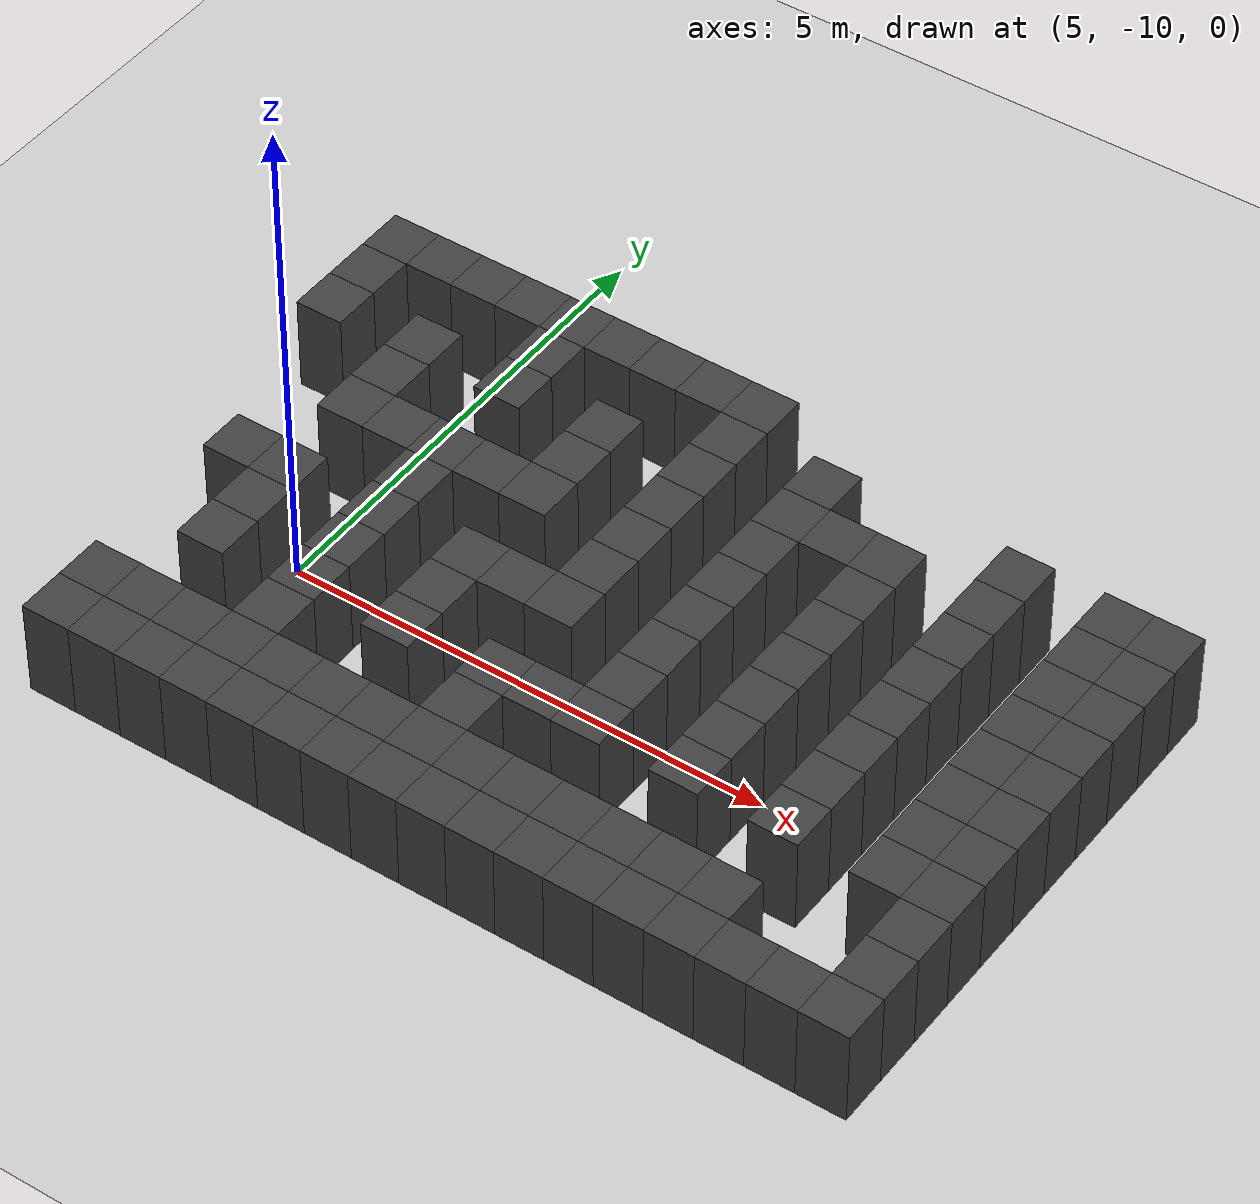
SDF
<sdf version="1.7">
 <world name="map_18553">
  <model name="ground_plane">
   <static>true</static>
   <link name="link">
    <collision name="collision">
     <geometry><plane><normal>0 0 1</normal><size>200 200</size></plane></geometry>
    </collision>
    <visual name="visual">
     <geometry><plane><normal>0 0 1</normal><size>200 200</size></plane></geometry>
     <material><ambient>0.8 0.8 0.8 1</ambient><diffuse>0.8 0.8 0.8 1</diffuse></material>
    </visual>
   </link>
  </model>
  <model name="maze_environment">
   <static>true</static>
   <link name="wall_977">
    <pose>3.750 -6.750 0.500 0 0 0</pose>
    <collision name="col"><geometry><box><size>0.5 0.5 1.0</size></box></geometry></collision>
    <visual name="vis">
     <geometry><box><size>0.5 0.5 1.0</size></box></geometry>
     <material><ambient>0.15 0.15 0.15 1</ambient><diffuse>0.25 0.25 0.25 1</diffuse></material>
    </visual>
   </link>
   <link name="wall_978">
    <pose>4.250 -6.750 0.500 0 0 0</pose>
    <collision name="col"><geometry><box><size>0.5 0.5 1.0</size></box></geometry></collision>
    <visual name="vis">
     <geometry><box><size>0.5 0.5 1.0</size></box></geometry>
     <material><ambient>0.15 0.15 0.15 1</ambient><diffuse>0.25 0.25 0.25 1</diffuse></material>
    </visual>
   </link>
   <link name="wall_979">
    <pose>4.750 -6.750 0.500 0 0 0</pose>
    <collision name="col"><geometry><box><size>0.5 0.5 1.0</size></box></geometry></collision>
    <visual name="vis">
     <geometry><box><size>0.5 0.5 1.0</size></box></geometry>
     <material><ambient>0.15 0.15 0.15 1</ambient><diffuse>0.25 0.25 0.25 1</diffuse></material>
    </visual>
   </link>
   <link name="wall_980">
    <pose>5.250 -6.750 0.500 0 0 0</pose>
    <collision name="col"><geometry><box><size>0.5 0.5 1.0</size></box></geometry></collision>
    <visual name="vis">
     <geometry><box><size>0.5 0.5 1.0</size></box></geometry>
     <material><ambient>0.15 0.15 0.15 1</ambient><diffuse>0.25 0.25 0.25 1</diffuse></material>
    </visual>
   </link>
   <link name="wall_981">
    <pose>5.750 -6.750 0.500 0 0 0</pose>
    <collision name="col"><geometry><box><size>0.5 0.5 1.0</size></box></geometry></collision>
    <visual name="vis">
     <geometry><box><size>0.5 0.5 1.0</size></box></geometry>
     <material><ambient>0.15 0.15 0.15 1</ambient><diffuse>0.25 0.25 0.25 1</diffuse></material>
    </visual>
   </link>
   <link name="wall_982">
    <pose>6.250 -6.750 0.500 0 0 0</pose>
    <collision name="col"><geometry><box><size>0.5 0.5 1.0</size></box></geometry></collision>
    <visual name="vis">
     <geometry><box><size>0.5 0.5 1.0</size></box></geometry>
     <material><ambient>0.15 0.15 0.15 1</ambient><diffuse>0.25 0.25 0.25 1</diffuse></material>
    </visual>
   </link>
   <link name="wall_983">
    <pose>6.750 -6.750 0.500 0 0 0</pose>
    <collision name="col"><geometry><box><size>0.5 0.5 1.0</size></box></geometry></collision>
    <visual name="vis">
     <geometry><box><size>0.5 0.5 1.0</size></box></geometry>
     <material><ambient>0.15 0.15 0.15 1</ambient><diffuse>0.25 0.25 0.25 1</diffuse></material>
    </visual>
   </link>
   <link name="wall_984">
    <pose>7.250 -6.750 0.500 0 0 0</pose>
    <collision name="col"><geometry><box><size>0.5 0.5 1.0</size></box></geometry></collision>
    <visual name="vis">
     <geometry><box><size>0.5 0.5 1.0</size></box></geometry>
     <material><ambient>0.15 0.15 0.15 1</ambient><diffuse>0.25 0.25 0.25 1</diffuse></material>
    </visual>
   </link>
   <link name="wall_985">
    <pose>7.750 -6.750 0.500 0 0 0</pose>
    <collision name="col"><geometry><box><size>0.5 0.5 1.0</size></box></geometry></collision>
    <visual name="vis">
     <geometry><box><size>0.5 0.5 1.0</size></box></geometry>
     <material><ambient>0.15 0.15 0.15 1</ambient><diffuse>0.25 0.25 0.25 1</diffuse></material>
    </visual>
   </link>
   <link name="wall_999">
    <pose>3.750 -7.250 0.500 0 0 0</pose>
    <collision name="col"><geometry><box><size>0.5 0.5 1.0</size></box></geometry></collision>
    <visual name="vis">
     <geometry><box><size>0.5 0.5 1.0</size></box></geometry>
     <material><ambient>0.15 0.15 0.15 1</ambient><diffuse>0.25 0.25 0.25 1</diffuse></material>
    </visual>
   </link>
   <link name="wall_1000">
    <pose>5.750 -7.250 0.500 0 0 0</pose>
    <collision name="col"><geometry><box><size>0.5 0.5 1.0</size></box></geometry></collision>
    <visual name="vis">
     <geometry><box><size>0.5 0.5 1.0</size></box></geometry>
     <material><ambient>0.15 0.15 0.15 1</ambient><diffuse>0.25 0.25 0.25 1</diffuse></material>
    </visual>
   </link>
   <link name="wall_1001">
    <pose>7.750 -7.250 0.500 0 0 0</pose>
    <collision name="col"><geometry><box><size>0.5 0.5 1.0</size></box></geometry></collision>
    <visual name="vis">
     <geometry><box><size>0.5 0.5 1.0</size></box></geometry>
     <material><ambient>0.15 0.15 0.15 1</ambient><diffuse>0.25 0.25 0.25 1</diffuse></material>
    </visual>
   </link>
   <link name="wall_1002">
    <pose>8.750 -7.250 0.500 0 0 0</pose>
    <collision name="col"><geometry><box><size>0.5 0.5 1.0</size></box></geometry></collision>
    <visual name="vis">
     <geometry><box><size>0.5 0.5 1.0</size></box></geometry>
     <material><ambient>0.15 0.15 0.15 1</ambient><diffuse>0.25 0.25 0.25 1</diffuse></material>
    </visual>
   </link>
   <link name="wall_1003">
    <pose>10.750 -7.250 0.500 0 0 0</pose>
    <collision name="col"><geometry><box><size>0.5 0.5 1.0</size></box></geometry></collision>
    <visual name="vis">
     <geometry><box><size>0.5 0.5 1.0</size></box></geometry>
     <material><ambient>0.15 0.15 0.15 1</ambient><diffuse>0.25 0.25 0.25 1</diffuse></material>
    </visual>
   </link>
   <link name="wall_1004">
    <pose>11.750 -7.250 0.500 0 0 0</pose>
    <collision name="col"><geometry><box><size>0.5 0.5 1.0</size></box></geometry></collision>
    <visual name="vis">
     <geometry><box><size>0.5 0.5 1.0</size></box></geometry>
     <material><ambient>0.15 0.15 0.15 1</ambient><diffuse>0.25 0.25 0.25 1</diffuse></material>
    </visual>
   </link>
   <link name="wall_1005">
    <pose>12.250 -7.250 0.500 0 0 0</pose>
    <collision name="col"><geometry><box><size>0.5 0.5 1.0</size></box></geometry></collision>
    <visual name="vis">
     <geometry><box><size>0.5 0.5 1.0</size></box></geometry>
     <material><ambient>0.15 0.15 0.15 1</ambient><diffuse>0.25 0.25 0.25 1</diffuse></material>
    </visual>
   </link>
   <link name="wall_1031">
    <pose>3.750 -7.750 0.500 0 0 0</pose>
    <collision name="col"><geometry><box><size>0.5 0.5 1.0</size></box></geometry></collision>
    <visual name="vis">
     <geometry><box><size>0.5 0.5 1.0</size></box></geometry>
     <material><ambient>0.15 0.15 0.15 1</ambient><diffuse>0.25 0.25 0.25 1</diffuse></material>
    </visual>
   </link>
   <link name="wall_1032">
    <pose>4.750 -7.750 0.500 0 0 0</pose>
    <collision name="col"><geometry><box><size>0.5 0.5 1.0</size></box></geometry></collision>
    <visual name="vis">
     <geometry><box><size>0.5 0.5 1.0</size></box></geometry>
     <material><ambient>0.15 0.15 0.15 1</ambient><diffuse>0.25 0.25 0.25 1</diffuse></material>
    </visual>
   </link>
   <link name="wall_1033">
    <pose>5.750 -7.750 0.500 0 0 0</pose>
    <collision name="col"><geometry><box><size>0.5 0.5 1.0</size></box></geometry></collision>
    <visual name="vis">
     <geometry><box><size>0.5 0.5 1.0</size></box></geometry>
     <material><ambient>0.15 0.15 0.15 1</ambient><diffuse>0.25 0.25 0.25 1</diffuse></material>
    </visual>
   </link>
   <link name="wall_1034">
    <pose>6.750 -7.750 0.500 0 0 0</pose>
    <collision name="col"><geometry><box><size>0.5 0.5 1.0</size></box></geometry></collision>
    <visual name="vis">
     <geometry><box><size>0.5 0.5 1.0</size></box></geometry>
     <material><ambient>0.15 0.15 0.15 1</ambient><diffuse>0.25 0.25 0.25 1</diffuse></material>
    </visual>
   </link>
   <link name="wall_1035">
    <pose>7.750 -7.750 0.500 0 0 0</pose>
    <collision name="col"><geometry><box><size>0.5 0.5 1.0</size></box></geometry></collision>
    <visual name="vis">
     <geometry><box><size>0.5 0.5 1.0</size></box></geometry>
     <material><ambient>0.15 0.15 0.15 1</ambient><diffuse>0.25 0.25 0.25 1</diffuse></material>
    </visual>
   </link>
   <link name="wall_1036">
    <pose>8.750 -7.750 0.500 0 0 0</pose>
    <collision name="col"><geometry><box><size>0.5 0.5 1.0</size></box></geometry></collision>
    <visual name="vis">
     <geometry><box><size>0.5 0.5 1.0</size></box></geometry>
     <material><ambient>0.15 0.15 0.15 1</ambient><diffuse>0.25 0.25 0.25 1</diffuse></material>
    </visual>
   </link>
   <link name="wall_1037">
    <pose>9.250 -7.750 0.500 0 0 0</pose>
    <collision name="col"><geometry><box><size>0.5 0.5 1.0</size></box></geometry></collision>
    <visual name="vis">
     <geometry><box><size>0.5 0.5 1.0</size></box></geometry>
     <material><ambient>0.15 0.15 0.15 1</ambient><diffuse>0.25 0.25 0.25 1</diffuse></material>
    </visual>
   </link>
   <link name="wall_1038">
    <pose>9.750 -7.750 0.500 0 0 0</pose>
    <collision name="col"><geometry><box><size>0.5 0.5 1.0</size></box></geometry></collision>
    <visual name="vis">
     <geometry><box><size>0.5 0.5 1.0</size></box></geometry>
     <material><ambient>0.15 0.15 0.15 1</ambient><diffuse>0.25 0.25 0.25 1</diffuse></material>
    </visual>
   </link>
   <link name="wall_1039">
    <pose>10.750 -7.750 0.500 0 0 0</pose>
    <collision name="col"><geometry><box><size>0.5 0.5 1.0</size></box></geometry></collision>
    <visual name="vis">
     <geometry><box><size>0.5 0.5 1.0</size></box></geometry>
     <material><ambient>0.15 0.15 0.15 1</ambient><diffuse>0.25 0.25 0.25 1</diffuse></material>
    </visual>
   </link>
   <link name="wall_1040">
    <pose>11.750 -7.750 0.500 0 0 0</pose>
    <collision name="col"><geometry><box><size>0.5 0.5 1.0</size></box></geometry></collision>
    <visual name="vis">
     <geometry><box><size>0.5 0.5 1.0</size></box></geometry>
     <material><ambient>0.15 0.15 0.15 1</ambient><diffuse>0.25 0.25 0.25 1</diffuse></material>
    </visual>
   </link>
   <link name="wall_1041">
    <pose>12.250 -7.750 0.500 0 0 0</pose>
    <collision name="col"><geometry><box><size>0.5 0.5 1.0</size></box></geometry></collision>
    <visual name="vis">
     <geometry><box><size>0.5 0.5 1.0</size></box></geometry>
     <material><ambient>0.15 0.15 0.15 1</ambient><diffuse>0.25 0.25 0.25 1</diffuse></material>
    </visual>
   </link>
   <link name="wall_1049">
    <pose>4.750 -8.250 0.500 0 0 0</pose>
    <collision name="col"><geometry><box><size>0.5 0.5 1.0</size></box></geometry></collision>
    <visual name="vis">
     <geometry><box><size>0.5 0.5 1.0</size></box></geometry>
     <material><ambient>0.15 0.15 0.15 1</ambient><diffuse>0.25 0.25 0.25 1</diffuse></material>
    </visual>
   </link>
   <link name="wall_1050">
    <pose>6.750 -8.250 0.500 0 0 0</pose>
    <collision name="col"><geometry><box><size>0.5 0.5 1.0</size></box></geometry></collision>
    <visual name="vis">
     <geometry><box><size>0.5 0.5 1.0</size></box></geometry>
     <material><ambient>0.15 0.15 0.15 1</ambient><diffuse>0.25 0.25 0.25 1</diffuse></material>
    </visual>
   </link>
   <link name="wall_1051">
    <pose>7.750 -8.250 0.500 0 0 0</pose>
    <collision name="col"><geometry><box><size>0.5 0.5 1.0</size></box></geometry></collision>
    <visual name="vis">
     <geometry><box><size>0.5 0.5 1.0</size></box></geometry>
     <material><ambient>0.15 0.15 0.15 1</ambient><diffuse>0.25 0.25 0.25 1</diffuse></material>
    </visual>
   </link>
   <link name="wall_1052">
    <pose>8.750 -8.250 0.500 0 0 0</pose>
    <collision name="col"><geometry><box><size>0.5 0.5 1.0</size></box></geometry></collision>
    <visual name="vis">
     <geometry><box><size>0.5 0.5 1.0</size></box></geometry>
     <material><ambient>0.15 0.15 0.15 1</ambient><diffuse>0.25 0.25 0.25 1</diffuse></material>
    </visual>
   </link>
   <link name="wall_1053">
    <pose>9.750 -8.250 0.500 0 0 0</pose>
    <collision name="col"><geometry><box><size>0.5 0.5 1.0</size></box></geometry></collision>
    <visual name="vis">
     <geometry><box><size>0.5 0.5 1.0</size></box></geometry>
     <material><ambient>0.15 0.15 0.15 1</ambient><diffuse>0.25 0.25 0.25 1</diffuse></material>
    </visual>
   </link>
   <link name="wall_1054">
    <pose>10.750 -8.250 0.500 0 0 0</pose>
    <collision name="col"><geometry><box><size>0.5 0.5 1.0</size></box></geometry></collision>
    <visual name="vis">
     <geometry><box><size>0.5 0.5 1.0</size></box></geometry>
     <material><ambient>0.15 0.15 0.15 1</ambient><diffuse>0.25 0.25 0.25 1</diffuse></material>
    </visual>
   </link>
   <link name="wall_1055">
    <pose>11.750 -8.250 0.500 0 0 0</pose>
    <collision name="col"><geometry><box><size>0.5 0.5 1.0</size></box></geometry></collision>
    <visual name="vis">
     <geometry><box><size>0.5 0.5 1.0</size></box></geometry>
     <material><ambient>0.15 0.15 0.15 1</ambient><diffuse>0.25 0.25 0.25 1</diffuse></material>
    </visual>
   </link>
   <link name="wall_1056">
    <pose>12.250 -8.250 0.500 0 0 0</pose>
    <collision name="col"><geometry><box><size>0.5 0.5 1.0</size></box></geometry></collision>
    <visual name="vis">
     <geometry><box><size>0.5 0.5 1.0</size></box></geometry>
     <material><ambient>0.15 0.15 0.15 1</ambient><diffuse>0.25 0.25 0.25 1</diffuse></material>
    </visual>
   </link>
   <link name="wall_1079">
    <pose>4.750 -8.750 0.500 0 0 0</pose>
    <collision name="col"><geometry><box><size>0.5 0.5 1.0</size></box></geometry></collision>
    <visual name="vis">
     <geometry><box><size>0.5 0.5 1.0</size></box></geometry>
     <material><ambient>0.15 0.15 0.15 1</ambient><diffuse>0.25 0.25 0.25 1</diffuse></material>
    </visual>
   </link>
   <link name="wall_1080">
    <pose>5.250 -8.750 0.500 0 0 0</pose>
    <collision name="col"><geometry><box><size>0.5 0.5 1.0</size></box></geometry></collision>
    <visual name="vis">
     <geometry><box><size>0.5 0.5 1.0</size></box></geometry>
     <material><ambient>0.15 0.15 0.15 1</ambient><diffuse>0.25 0.25 0.25 1</diffuse></material>
    </visual>
   </link>
   <link name="wall_1081">
    <pose>5.750 -8.750 0.500 0 0 0</pose>
    <collision name="col"><geometry><box><size>0.5 0.5 1.0</size></box></geometry></collision>
    <visual name="vis">
     <geometry><box><size>0.5 0.5 1.0</size></box></geometry>
     <material><ambient>0.15 0.15 0.15 1</ambient><diffuse>0.25 0.25 0.25 1</diffuse></material>
    </visual>
   </link>
   <link name="wall_1082">
    <pose>6.250 -8.750 0.500 0 0 0</pose>
    <collision name="col"><geometry><box><size>0.5 0.5 1.0</size></box></geometry></collision>
    <visual name="vis">
     <geometry><box><size>0.5 0.5 1.0</size></box></geometry>
     <material><ambient>0.15 0.15 0.15 1</ambient><diffuse>0.25 0.25 0.25 1</diffuse></material>
    </visual>
   </link>
   <link name="wall_1083">
    <pose>6.750 -8.750 0.500 0 0 0</pose>
    <collision name="col"><geometry><box><size>0.5 0.5 1.0</size></box></geometry></collision>
    <visual name="vis">
     <geometry><box><size>0.5 0.5 1.0</size></box></geometry>
     <material><ambient>0.15 0.15 0.15 1</ambient><diffuse>0.25 0.25 0.25 1</diffuse></material>
    </visual>
   </link>
   <link name="wall_1084">
    <pose>7.750 -8.750 0.500 0 0 0</pose>
    <collision name="col"><geometry><box><size>0.5 0.5 1.0</size></box></geometry></collision>
    <visual name="vis">
     <geometry><box><size>0.5 0.5 1.0</size></box></geometry>
     <material><ambient>0.15 0.15 0.15 1</ambient><diffuse>0.25 0.25 0.25 1</diffuse></material>
    </visual>
   </link>
   <link name="wall_1085">
    <pose>8.750 -8.750 0.500 0 0 0</pose>
    <collision name="col"><geometry><box><size>0.5 0.5 1.0</size></box></geometry></collision>
    <visual name="vis">
     <geometry><box><size>0.5 0.5 1.0</size></box></geometry>
     <material><ambient>0.15 0.15 0.15 1</ambient><diffuse>0.25 0.25 0.25 1</diffuse></material>
    </visual>
   </link>
   <link name="wall_1086">
    <pose>9.750 -8.750 0.500 0 0 0</pose>
    <collision name="col"><geometry><box><size>0.5 0.5 1.0</size></box></geometry></collision>
    <visual name="vis">
     <geometry><box><size>0.5 0.5 1.0</size></box></geometry>
     <material><ambient>0.15 0.15 0.15 1</ambient><diffuse>0.25 0.25 0.25 1</diffuse></material>
    </visual>
   </link>
   <link name="wall_1087">
    <pose>10.750 -8.750 0.500 0 0 0</pose>
    <collision name="col"><geometry><box><size>0.5 0.5 1.0</size></box></geometry></collision>
    <visual name="vis">
     <geometry><box><size>0.5 0.5 1.0</size></box></geometry>
     <material><ambient>0.15 0.15 0.15 1</ambient><diffuse>0.25 0.25 0.25 1</diffuse></material>
    </visual>
   </link>
   <link name="wall_1088">
    <pose>11.750 -8.750 0.500 0 0 0</pose>
    <collision name="col"><geometry><box><size>0.5 0.5 1.0</size></box></geometry></collision>
    <visual name="vis">
     <geometry><box><size>0.5 0.5 1.0</size></box></geometry>
     <material><ambient>0.15 0.15 0.15 1</ambient><diffuse>0.25 0.25 0.25 1</diffuse></material>
    </visual>
   </link>
   <link name="wall_1089">
    <pose>12.250 -8.750 0.500 0 0 0</pose>
    <collision name="col"><geometry><box><size>0.5 0.5 1.0</size></box></geometry></collision>
    <visual name="vis">
     <geometry><box><size>0.5 0.5 1.0</size></box></geometry>
     <material><ambient>0.15 0.15 0.15 1</ambient><diffuse>0.25 0.25 0.25 1</diffuse></material>
    </visual>
   </link>
   <link name="wall_1102">
    <pose>5.750 -9.250 0.500 0 0 0</pose>
    <collision name="col"><geometry><box><size>0.5 0.5 1.0</size></box></geometry></collision>
    <visual name="vis">
     <geometry><box><size>0.5 0.5 1.0</size></box></geometry>
     <material><ambient>0.15 0.15 0.15 1</ambient><diffuse>0.25 0.25 0.25 1</diffuse></material>
    </visual>
   </link>
   <link name="wall_1103">
    <pose>7.750 -9.250 0.500 0 0 0</pose>
    <collision name="col"><geometry><box><size>0.5 0.5 1.0</size></box></geometry></collision>
    <visual name="vis">
     <geometry><box><size>0.5 0.5 1.0</size></box></geometry>
     <material><ambient>0.15 0.15 0.15 1</ambient><diffuse>0.25 0.25 0.25 1</diffuse></material>
    </visual>
   </link>
   <link name="wall_1104">
    <pose>8.750 -9.250 0.500 0 0 0</pose>
    <collision name="col"><geometry><box><size>0.5 0.5 1.0</size></box></geometry></collision>
    <visual name="vis">
     <geometry><box><size>0.5 0.5 1.0</size></box></geometry>
     <material><ambient>0.15 0.15 0.15 1</ambient><diffuse>0.25 0.25 0.25 1</diffuse></material>
    </visual>
   </link>
   <link name="wall_1105">
    <pose>9.750 -9.250 0.500 0 0 0</pose>
    <collision name="col"><geometry><box><size>0.5 0.5 1.0</size></box></geometry></collision>
    <visual name="vis">
     <geometry><box><size>0.5 0.5 1.0</size></box></geometry>
     <material><ambient>0.15 0.15 0.15 1</ambient><diffuse>0.25 0.25 0.25 1</diffuse></material>
    </visual>
   </link>
   <link name="wall_1106">
    <pose>10.750 -9.250 0.500 0 0 0</pose>
    <collision name="col"><geometry><box><size>0.5 0.5 1.0</size></box></geometry></collision>
    <visual name="vis">
     <geometry><box><size>0.5 0.5 1.0</size></box></geometry>
     <material><ambient>0.15 0.15 0.15 1</ambient><diffuse>0.25 0.25 0.25 1</diffuse></material>
    </visual>
   </link>
   <link name="wall_1107">
    <pose>11.750 -9.250 0.500 0 0 0</pose>
    <collision name="col"><geometry><box><size>0.5 0.5 1.0</size></box></geometry></collision>
    <visual name="vis">
     <geometry><box><size>0.5 0.5 1.0</size></box></geometry>
     <material><ambient>0.15 0.15 0.15 1</ambient><diffuse>0.25 0.25 0.25 1</diffuse></material>
    </visual>
   </link>
   <link name="wall_1108">
    <pose>12.250 -9.250 0.500 0 0 0</pose>
    <collision name="col"><geometry><box><size>0.5 0.5 1.0</size></box></geometry></collision>
    <visual name="vis">
     <geometry><box><size>0.5 0.5 1.0</size></box></geometry>
     <material><ambient>0.15 0.15 0.15 1</ambient><diffuse>0.25 0.25 0.25 1</diffuse></material>
    </visual>
   </link>
   <link name="wall_1131">
    <pose>4.250 -9.750 0.500 0 0 0</pose>
    <collision name="col"><geometry><box><size>0.5 0.5 1.0</size></box></geometry></collision>
    <visual name="vis">
     <geometry><box><size>0.5 0.5 1.0</size></box></geometry>
     <material><ambient>0.15 0.15 0.15 1</ambient><diffuse>0.25 0.25 0.25 1</diffuse></material>
    </visual>
   </link>
   <link name="wall_1132">
    <pose>4.750 -9.750 0.500 0 0 0</pose>
    <collision name="col"><geometry><box><size>0.5 0.5 1.0</size></box></geometry></collision>
    <visual name="vis">
     <geometry><box><size>0.5 0.5 1.0</size></box></geometry>
     <material><ambient>0.15 0.15 0.15 1</ambient><diffuse>0.25 0.25 0.25 1</diffuse></material>
    </visual>
   </link>
   <link name="wall_1133">
    <pose>5.750 -9.750 0.500 0 0 0</pose>
    <collision name="col"><geometry><box><size>0.5 0.5 1.0</size></box></geometry></collision>
    <visual name="vis">
     <geometry><box><size>0.5 0.5 1.0</size></box></geometry>
     <material><ambient>0.15 0.15 0.15 1</ambient><diffuse>0.25 0.25 0.25 1</diffuse></material>
    </visual>
   </link>
   <link name="wall_1134">
    <pose>6.750 -9.750 0.500 0 0 0</pose>
    <collision name="col"><geometry><box><size>0.5 0.5 1.0</size></box></geometry></collision>
    <visual name="vis">
     <geometry><box><size>0.5 0.5 1.0</size></box></geometry>
     <material><ambient>0.15 0.15 0.15 1</ambient><diffuse>0.25 0.25 0.25 1</diffuse></material>
    </visual>
   </link>
   <link name="wall_1135">
    <pose>7.250 -9.750 0.500 0 0 0</pose>
    <collision name="col"><geometry><box><size>0.5 0.5 1.0</size></box></geometry></collision>
    <visual name="vis">
     <geometry><box><size>0.5 0.5 1.0</size></box></geometry>
     <material><ambient>0.15 0.15 0.15 1</ambient><diffuse>0.25 0.25 0.25 1</diffuse></material>
    </visual>
   </link>
   <link name="wall_1136">
    <pose>7.750 -9.750 0.500 0 0 0</pose>
    <collision name="col"><geometry><box><size>0.5 0.5 1.0</size></box></geometry></collision>
    <visual name="vis">
     <geometry><box><size>0.5 0.5 1.0</size></box></geometry>
     <material><ambient>0.15 0.15 0.15 1</ambient><diffuse>0.25 0.25 0.25 1</diffuse></material>
    </visual>
   </link>
   <link name="wall_1137">
    <pose>8.750 -9.750 0.500 0 0 0</pose>
    <collision name="col"><geometry><box><size>0.5 0.5 1.0</size></box></geometry></collision>
    <visual name="vis">
     <geometry><box><size>0.5 0.5 1.0</size></box></geometry>
     <material><ambient>0.15 0.15 0.15 1</ambient><diffuse>0.25 0.25 0.25 1</diffuse></material>
    </visual>
   </link>
   <link name="wall_1138">
    <pose>9.750 -9.750 0.500 0 0 0</pose>
    <collision name="col"><geometry><box><size>0.5 0.5 1.0</size></box></geometry></collision>
    <visual name="vis">
     <geometry><box><size>0.5 0.5 1.0</size></box></geometry>
     <material><ambient>0.15 0.15 0.15 1</ambient><diffuse>0.25 0.25 0.25 1</diffuse></material>
    </visual>
   </link>
   <link name="wall_1139">
    <pose>10.750 -9.750 0.500 0 0 0</pose>
    <collision name="col"><geometry><box><size>0.5 0.5 1.0</size></box></geometry></collision>
    <visual name="vis">
     <geometry><box><size>0.5 0.5 1.0</size></box></geometry>
     <material><ambient>0.15 0.15 0.15 1</ambient><diffuse>0.25 0.25 0.25 1</diffuse></material>
    </visual>
   </link>
   <link name="wall_1140">
    <pose>11.750 -9.750 0.500 0 0 0</pose>
    <collision name="col"><geometry><box><size>0.5 0.5 1.0</size></box></geometry></collision>
    <visual name="vis">
     <geometry><box><size>0.5 0.5 1.0</size></box></geometry>
     <material><ambient>0.15 0.15 0.15 1</ambient><diffuse>0.25 0.25 0.25 1</diffuse></material>
    </visual>
   </link>
   <link name="wall_1141">
    <pose>12.250 -9.750 0.500 0 0 0</pose>
    <collision name="col"><geometry><box><size>0.5 0.5 1.0</size></box></geometry></collision>
    <visual name="vis">
     <geometry><box><size>0.5 0.5 1.0</size></box></geometry>
     <material><ambient>0.15 0.15 0.15 1</ambient><diffuse>0.25 0.25 0.25 1</diffuse></material>
    </visual>
   </link>
   <link name="wall_1151">
    <pose>4.750 -10.250 0.500 0 0 0</pose>
    <collision name="col"><geometry><box><size>0.5 0.5 1.0</size></box></geometry></collision>
    <visual name="vis">
     <geometry><box><size>0.5 0.5 1.0</size></box></geometry>
     <material><ambient>0.15 0.15 0.15 1</ambient><diffuse>0.25 0.25 0.25 1</diffuse></material>
    </visual>
   </link>
   <link name="wall_1152">
    <pose>5.750 -10.250 0.500 0 0 0</pose>
    <collision name="col"><geometry><box><size>0.5 0.5 1.0</size></box></geometry></collision>
    <visual name="vis">
     <geometry><box><size>0.5 0.5 1.0</size></box></geometry>
     <material><ambient>0.15 0.15 0.15 1</ambient><diffuse>0.25 0.25 0.25 1</diffuse></material>
    </visual>
   </link>
   <link name="wall_1153">
    <pose>6.750 -10.250 0.500 0 0 0</pose>
    <collision name="col"><geometry><box><size>0.5 0.5 1.0</size></box></geometry></collision>
    <visual name="vis">
     <geometry><box><size>0.5 0.5 1.0</size></box></geometry>
     <material><ambient>0.15 0.15 0.15 1</ambient><diffuse>0.25 0.25 0.25 1</diffuse></material>
    </visual>
   </link>
   <link name="wall_1154">
    <pose>8.750 -10.250 0.500 0 0 0</pose>
    <collision name="col"><geometry><box><size>0.5 0.5 1.0</size></box></geometry></collision>
    <visual name="vis">
     <geometry><box><size>0.5 0.5 1.0</size></box></geometry>
     <material><ambient>0.15 0.15 0.15 1</ambient><diffuse>0.25 0.25 0.25 1</diffuse></material>
    </visual>
   </link>
   <link name="wall_1155">
    <pose>9.750 -10.250 0.500 0 0 0</pose>
    <collision name="col"><geometry><box><size>0.5 0.5 1.0</size></box></geometry></collision>
    <visual name="vis">
     <geometry><box><size>0.5 0.5 1.0</size></box></geometry>
     <material><ambient>0.15 0.15 0.15 1</ambient><diffuse>0.25 0.25 0.25 1</diffuse></material>
    </visual>
   </link>
   <link name="wall_1156">
    <pose>10.750 -10.250 0.500 0 0 0</pose>
    <collision name="col"><geometry><box><size>0.5 0.5 1.0</size></box></geometry></collision>
    <visual name="vis">
     <geometry><box><size>0.5 0.5 1.0</size></box></geometry>
     <material><ambient>0.15 0.15 0.15 1</ambient><diffuse>0.25 0.25 0.25 1</diffuse></material>
    </visual>
   </link>
   <link name="wall_1157">
    <pose>11.750 -10.250 0.500 0 0 0</pose>
    <collision name="col"><geometry><box><size>0.5 0.5 1.0</size></box></geometry></collision>
    <visual name="vis">
     <geometry><box><size>0.5 0.5 1.0</size></box></geometry>
     <material><ambient>0.15 0.15 0.15 1</ambient><diffuse>0.25 0.25 0.25 1</diffuse></material>
    </visual>
   </link>
   <link name="wall_1158">
    <pose>12.250 -10.250 0.500 0 0 0</pose>
    <collision name="col"><geometry><box><size>0.5 0.5 1.0</size></box></geometry></collision>
    <visual name="vis">
     <geometry><box><size>0.5 0.5 1.0</size></box></geometry>
     <material><ambient>0.15 0.15 0.15 1</ambient><diffuse>0.25 0.25 0.25 1</diffuse></material>
    </visual>
   </link>
   <link name="wall_1185">
    <pose>4.750 -10.750 0.500 0 0 0</pose>
    <collision name="col"><geometry><box><size>0.5 0.5 1.0</size></box></geometry></collision>
    <visual name="vis">
     <geometry><box><size>0.5 0.5 1.0</size></box></geometry>
     <material><ambient>0.15 0.15 0.15 1</ambient><diffuse>0.25 0.25 0.25 1</diffuse></material>
    </visual>
   </link>
   <link name="wall_1186">
    <pose>5.750 -10.750 0.500 0 0 0</pose>
    <collision name="col"><geometry><box><size>0.5 0.5 1.0</size></box></geometry></collision>
    <visual name="vis">
     <geometry><box><size>0.5 0.5 1.0</size></box></geometry>
     <material><ambient>0.15 0.15 0.15 1</ambient><diffuse>0.25 0.25 0.25 1</diffuse></material>
    </visual>
   </link>
   <link name="wall_1187">
    <pose>6.750 -10.750 0.500 0 0 0</pose>
    <collision name="col"><geometry><box><size>0.5 0.5 1.0</size></box></geometry></collision>
    <visual name="vis">
     <geometry><box><size>0.5 0.5 1.0</size></box></geometry>
     <material><ambient>0.15 0.15 0.15 1</ambient><diffuse>0.25 0.25 0.25 1</diffuse></material>
    </visual>
   </link>
   <link name="wall_1188">
    <pose>7.750 -10.750 0.500 0 0 0</pose>
    <collision name="col"><geometry><box><size>0.5 0.5 1.0</size></box></geometry></collision>
    <visual name="vis">
     <geometry><box><size>0.5 0.5 1.0</size></box></geometry>
     <material><ambient>0.15 0.15 0.15 1</ambient><diffuse>0.25 0.25 0.25 1</diffuse></material>
    </visual>
   </link>
   <link name="wall_1189">
    <pose>8.250 -10.750 0.500 0 0 0</pose>
    <collision name="col"><geometry><box><size>0.5 0.5 1.0</size></box></geometry></collision>
    <visual name="vis">
     <geometry><box><size>0.5 0.5 1.0</size></box></geometry>
     <material><ambient>0.15 0.15 0.15 1</ambient><diffuse>0.25 0.25 0.25 1</diffuse></material>
    </visual>
   </link>
   <link name="wall_1190">
    <pose>8.750 -10.750 0.500 0 0 0</pose>
    <collision name="col"><geometry><box><size>0.5 0.5 1.0</size></box></geometry></collision>
    <visual name="vis">
     <geometry><box><size>0.5 0.5 1.0</size></box></geometry>
     <material><ambient>0.15 0.15 0.15 1</ambient><diffuse>0.25 0.25 0.25 1</diffuse></material>
    </visual>
   </link>
   <link name="wall_1191">
    <pose>9.750 -10.750 0.500 0 0 0</pose>
    <collision name="col"><geometry><box><size>0.5 0.5 1.0</size></box></geometry></collision>
    <visual name="vis">
     <geometry><box><size>0.5 0.5 1.0</size></box></geometry>
     <material><ambient>0.15 0.15 0.15 1</ambient><diffuse>0.25 0.25 0.25 1</diffuse></material>
    </visual>
   </link>
   <link name="wall_1192">
    <pose>10.750 -10.750 0.500 0 0 0</pose>
    <collision name="col"><geometry><box><size>0.5 0.5 1.0</size></box></geometry></collision>
    <visual name="vis">
     <geometry><box><size>0.5 0.5 1.0</size></box></geometry>
     <material><ambient>0.15 0.15 0.15 1</ambient><diffuse>0.25 0.25 0.25 1</diffuse></material>
    </visual>
   </link>
   <link name="wall_1193">
    <pose>11.750 -10.750 0.500 0 0 0</pose>
    <collision name="col"><geometry><box><size>0.5 0.5 1.0</size></box></geometry></collision>
    <visual name="vis">
     <geometry><box><size>0.5 0.5 1.0</size></box></geometry>
     <material><ambient>0.15 0.15 0.15 1</ambient><diffuse>0.25 0.25 0.25 1</diffuse></material>
    </visual>
   </link>
   <link name="wall_1194">
    <pose>12.250 -10.750 0.500 0 0 0</pose>
    <collision name="col"><geometry><box><size>0.5 0.5 1.0</size></box></geometry></collision>
    <visual name="vis">
     <geometry><box><size>0.5 0.5 1.0</size></box></geometry>
     <material><ambient>0.15 0.15 0.15 1</ambient><diffuse>0.25 0.25 0.25 1</diffuse></material>
    </visual>
   </link>
   <link name="wall_1199">
    <pose>5.750 -11.250 0.500 0 0 0</pose>
    <collision name="col"><geometry><box><size>0.5 0.5 1.0</size></box></geometry></collision>
    <visual name="vis">
     <geometry><box><size>0.5 0.5 1.0</size></box></geometry>
     <material><ambient>0.15 0.15 0.15 1</ambient><diffuse>0.25 0.25 0.25 1</diffuse></material>
    </visual>
   </link>
   <link name="wall_1200">
    <pose>7.750 -11.250 0.500 0 0 0</pose>
    <collision name="col"><geometry><box><size>0.5 0.5 1.0</size></box></geometry></collision>
    <visual name="vis">
     <geometry><box><size>0.5 0.5 1.0</size></box></geometry>
     <material><ambient>0.15 0.15 0.15 1</ambient><diffuse>0.25 0.25 0.25 1</diffuse></material>
    </visual>
   </link>
   <link name="wall_1201">
    <pose>12.250 -11.250 0.500 0 0 0</pose>
    <collision name="col"><geometry><box><size>0.5 0.5 1.0</size></box></geometry></collision>
    <visual name="vis">
     <geometry><box><size>0.5 0.5 1.0</size></box></geometry>
     <material><ambient>0.15 0.15 0.15 1</ambient><diffuse>0.25 0.25 0.25 1</diffuse></material>
    </visual>
   </link>
   <link name="wall_1235">
    <pose>4.250 -11.750 0.500 0 0 0</pose>
    <collision name="col"><geometry><box><size>0.5 0.5 1.0</size></box></geometry></collision>
    <visual name="vis">
     <geometry><box><size>0.5 0.5 1.0</size></box></geometry>
     <material><ambient>0.15 0.15 0.15 1</ambient><diffuse>0.25 0.25 0.25 1</diffuse></material>
    </visual>
   </link>
   <link name="wall_1236">
    <pose>4.750 -11.750 0.500 0 0 0</pose>
    <collision name="col"><geometry><box><size>0.5 0.5 1.0</size></box></geometry></collision>
    <visual name="vis">
     <geometry><box><size>0.5 0.5 1.0</size></box></geometry>
     <material><ambient>0.15 0.15 0.15 1</ambient><diffuse>0.25 0.25 0.25 1</diffuse></material>
    </visual>
   </link>
   <link name="wall_1237">
    <pose>5.250 -11.750 0.500 0 0 0</pose>
    <collision name="col"><geometry><box><size>0.5 0.5 1.0</size></box></geometry></collision>
    <visual name="vis">
     <geometry><box><size>0.5 0.5 1.0</size></box></geometry>
     <material><ambient>0.15 0.15 0.15 1</ambient><diffuse>0.25 0.25 0.25 1</diffuse></material>
    </visual>
   </link>
   <link name="wall_1238">
    <pose>5.750 -11.750 0.500 0 0 0</pose>
    <collision name="col"><geometry><box><size>0.5 0.5 1.0</size></box></geometry></collision>
    <visual name="vis">
     <geometry><box><size>0.5 0.5 1.0</size></box></geometry>
     <material><ambient>0.15 0.15 0.15 1</ambient><diffuse>0.25 0.25 0.25 1</diffuse></material>
    </visual>
   </link>
   <link name="wall_1239">
    <pose>6.250 -11.750 0.500 0 0 0</pose>
    <collision name="col"><geometry><box><size>0.5 0.5 1.0</size></box></geometry></collision>
    <visual name="vis">
     <geometry><box><size>0.5 0.5 1.0</size></box></geometry>
     <material><ambient>0.15 0.15 0.15 1</ambient><diffuse>0.25 0.25 0.25 1</diffuse></material>
    </visual>
   </link>
   <link name="wall_1240">
    <pose>6.750 -11.750 0.500 0 0 0</pose>
    <collision name="col"><geometry><box><size>0.5 0.5 1.0</size></box></geometry></collision>
    <visual name="vis">
     <geometry><box><size>0.5 0.5 1.0</size></box></geometry>
     <material><ambient>0.15 0.15 0.15 1</ambient><diffuse>0.25 0.25 0.25 1</diffuse></material>
    </visual>
   </link>
   <link name="wall_1241">
    <pose>7.250 -11.750 0.500 0 0 0</pose>
    <collision name="col"><geometry><box><size>0.5 0.5 1.0</size></box></geometry></collision>
    <visual name="vis">
     <geometry><box><size>0.5 0.5 1.0</size></box></geometry>
     <material><ambient>0.15 0.15 0.15 1</ambient><diffuse>0.25 0.25 0.25 1</diffuse></material>
    </visual>
   </link>
   <link name="wall_1242">
    <pose>7.750 -11.750 0.500 0 0 0</pose>
    <collision name="col"><geometry><box><size>0.5 0.5 1.0</size></box></geometry></collision>
    <visual name="vis">
     <geometry><box><size>0.5 0.5 1.0</size></box></geometry>
     <material><ambient>0.15 0.15 0.15 1</ambient><diffuse>0.25 0.25 0.25 1</diffuse></material>
    </visual>
   </link>
   <link name="wall_1243">
    <pose>8.250 -11.750 0.500 0 0 0</pose>
    <collision name="col"><geometry><box><size>0.5 0.5 1.0</size></box></geometry></collision>
    <visual name="vis">
     <geometry><box><size>0.5 0.5 1.0</size></box></geometry>
     <material><ambient>0.15 0.15 0.15 1</ambient><diffuse>0.25 0.25 0.25 1</diffuse></material>
    </visual>
   </link>
   <link name="wall_1244">
    <pose>8.750 -11.750 0.500 0 0 0</pose>
    <collision name="col"><geometry><box><size>0.5 0.5 1.0</size></box></geometry></collision>
    <visual name="vis">
     <geometry><box><size>0.5 0.5 1.0</size></box></geometry>
     <material><ambient>0.15 0.15 0.15 1</ambient><diffuse>0.25 0.25 0.25 1</diffuse></material>
    </visual>
   </link>
   <link name="wall_1245">
    <pose>9.250 -11.750 0.500 0 0 0</pose>
    <collision name="col"><geometry><box><size>0.5 0.5 1.0</size></box></geometry></collision>
    <visual name="vis">
     <geometry><box><size>0.5 0.5 1.0</size></box></geometry>
     <material><ambient>0.15 0.15 0.15 1</ambient><diffuse>0.25 0.25 0.25 1</diffuse></material>
    </visual>
   </link>
   <link name="wall_1246">
    <pose>9.750 -11.750 0.500 0 0 0</pose>
    <collision name="col"><geometry><box><size>0.5 0.5 1.0</size></box></geometry></collision>
    <visual name="vis">
     <geometry><box><size>0.5 0.5 1.0</size></box></geometry>
     <material><ambient>0.15 0.15 0.15 1</ambient><diffuse>0.25 0.25 0.25 1</diffuse></material>
    </visual>
   </link>
   <link name="wall_1247">
    <pose>10.250 -11.750 0.500 0 0 0</pose>
    <collision name="col"><geometry><box><size>0.5 0.5 1.0</size></box></geometry></collision>
    <visual name="vis">
     <geometry><box><size>0.5 0.5 1.0</size></box></geometry>
     <material><ambient>0.15 0.15 0.15 1</ambient><diffuse>0.25 0.25 0.25 1</diffuse></material>
    </visual>
   </link>
   <link name="wall_1248">
    <pose>10.750 -11.750 0.500 0 0 0</pose>
    <collision name="col"><geometry><box><size>0.5 0.5 1.0</size></box></geometry></collision>
    <visual name="vis">
     <geometry><box><size>0.5 0.5 1.0</size></box></geometry>
     <material><ambient>0.15 0.15 0.15 1</ambient><diffuse>0.25 0.25 0.25 1</diffuse></material>
    </visual>
   </link>
   <link name="wall_1249">
    <pose>12.250 -11.750 0.500 0 0 0</pose>
    <collision name="col"><geometry><box><size>0.5 0.5 1.0</size></box></geometry></collision>
    <visual name="vis">
     <geometry><box><size>0.5 0.5 1.0</size></box></geometry>
     <material><ambient>0.15 0.15 0.15 1</ambient><diffuse>0.25 0.25 0.25 1</diffuse></material>
    </visual>
   </link>
   <link name="wall_1283">
    <pose>4.250 -12.250 0.500 0 0 0</pose>
    <collision name="col"><geometry><box><size>0.5 0.5 1.0</size></box></geometry></collision>
    <visual name="vis">
     <geometry><box><size>0.5 0.5 1.0</size></box></geometry>
     <material><ambient>0.15 0.15 0.15 1</ambient><diffuse>0.25 0.25 0.25 1</diffuse></material>
    </visual>
   </link>
   <link name="wall_1284">
    <pose>4.750 -12.250 0.500 0 0 0</pose>
    <collision name="col"><geometry><box><size>0.5 0.5 1.0</size></box></geometry></collision>
    <visual name="vis">
     <geometry><box><size>0.5 0.5 1.0</size></box></geometry>
     <material><ambient>0.15 0.15 0.15 1</ambient><diffuse>0.25 0.25 0.25 1</diffuse></material>
    </visual>
   </link>
   <link name="wall_1285">
    <pose>5.250 -12.250 0.500 0 0 0</pose>
    <collision name="col"><geometry><box><size>0.5 0.5 1.0</size></box></geometry></collision>
    <visual name="vis">
     <geometry><box><size>0.5 0.5 1.0</size></box></geometry>
     <material><ambient>0.15 0.15 0.15 1</ambient><diffuse>0.25 0.25 0.25 1</diffuse></material>
    </visual>
   </link>
   <link name="wall_1286">
    <pose>5.750 -12.250 0.500 0 0 0</pose>
    <collision name="col"><geometry><box><size>0.5 0.5 1.0</size></box></geometry></collision>
    <visual name="vis">
     <geometry><box><size>0.5 0.5 1.0</size></box></geometry>
     <material><ambient>0.15 0.15 0.15 1</ambient><diffuse>0.25 0.25 0.25 1</diffuse></material>
    </visual>
   </link>
   <link name="wall_1287">
    <pose>6.250 -12.250 0.500 0 0 0</pose>
    <collision name="col"><geometry><box><size>0.5 0.5 1.0</size></box></geometry></collision>
    <visual name="vis">
     <geometry><box><size>0.5 0.5 1.0</size></box></geometry>
     <material><ambient>0.15 0.15 0.15 1</ambient><diffuse>0.25 0.25 0.25 1</diffuse></material>
    </visual>
   </link>
   <link name="wall_1288">
    <pose>6.750 -12.250 0.500 0 0 0</pose>
    <collision name="col"><geometry><box><size>0.5 0.5 1.0</size></box></geometry></collision>
    <visual name="vis">
     <geometry><box><size>0.5 0.5 1.0</size></box></geometry>
     <material><ambient>0.15 0.15 0.15 1</ambient><diffuse>0.25 0.25 0.25 1</diffuse></material>
    </visual>
   </link>
   <link name="wall_1289">
    <pose>7.250 -12.250 0.500 0 0 0</pose>
    <collision name="col"><geometry><box><size>0.5 0.5 1.0</size></box></geometry></collision>
    <visual name="vis">
     <geometry><box><size>0.5 0.5 1.0</size></box></geometry>
     <material><ambient>0.15 0.15 0.15 1</ambient><diffuse>0.25 0.25 0.25 1</diffuse></material>
    </visual>
   </link>
   <link name="wall_1290">
    <pose>7.750 -12.250 0.500 0 0 0</pose>
    <collision name="col"><geometry><box><size>0.5 0.5 1.0</size></box></geometry></collision>
    <visual name="vis">
     <geometry><box><size>0.5 0.5 1.0</size></box></geometry>
     <material><ambient>0.15 0.15 0.15 1</ambient><diffuse>0.25 0.25 0.25 1</diffuse></material>
    </visual>
   </link>
   <link name="wall_1291">
    <pose>8.250 -12.250 0.500 0 0 0</pose>
    <collision name="col"><geometry><box><size>0.5 0.5 1.0</size></box></geometry></collision>
    <visual name="vis">
     <geometry><box><size>0.5 0.5 1.0</size></box></geometry>
     <material><ambient>0.15 0.15 0.15 1</ambient><diffuse>0.25 0.25 0.25 1</diffuse></material>
    </visual>
   </link>
   <link name="wall_1292">
    <pose>8.750 -12.250 0.500 0 0 0</pose>
    <collision name="col"><geometry><box><size>0.5 0.5 1.0</size></box></geometry></collision>
    <visual name="vis">
     <geometry><box><size>0.5 0.5 1.0</size></box></geometry>
     <material><ambient>0.15 0.15 0.15 1</ambient><diffuse>0.25 0.25 0.25 1</diffuse></material>
    </visual>
   </link>
   <link name="wall_1293">
    <pose>9.250 -12.250 0.500 0 0 0</pose>
    <collision name="col"><geometry><box><size>0.5 0.5 1.0</size></box></geometry></collision>
    <visual name="vis">
     <geometry><box><size>0.5 0.5 1.0</size></box></geometry>
     <material><ambient>0.15 0.15 0.15 1</ambient><diffuse>0.25 0.25 0.25 1</diffuse></material>
    </visual>
   </link>
   <link name="wall_1294">
    <pose>9.750 -12.250 0.500 0 0 0</pose>
    <collision name="col"><geometry><box><size>0.5 0.5 1.0</size></box></geometry></collision>
    <visual name="vis">
     <geometry><box><size>0.5 0.5 1.0</size></box></geometry>
     <material><ambient>0.15 0.15 0.15 1</ambient><diffuse>0.25 0.25 0.25 1</diffuse></material>
    </visual>
   </link>
   <link name="wall_1295">
    <pose>10.250 -12.250 0.500 0 0 0</pose>
    <collision name="col"><geometry><box><size>0.5 0.5 1.0</size></box></geometry></collision>
    <visual name="vis">
     <geometry><box><size>0.5 0.5 1.0</size></box></geometry>
     <material><ambient>0.15 0.15 0.15 1</ambient><diffuse>0.25 0.25 0.25 1</diffuse></material>
    </visual>
   </link>
   <link name="wall_1296">
    <pose>10.750 -12.250 0.500 0 0 0</pose>
    <collision name="col"><geometry><box><size>0.5 0.5 1.0</size></box></geometry></collision>
    <visual name="vis">
     <geometry><box><size>0.5 0.5 1.0</size></box></geometry>
     <material><ambient>0.15 0.15 0.15 1</ambient><diffuse>0.25 0.25 0.25 1</diffuse></material>
    </visual>
   </link>
   <link name="wall_1297">
    <pose>11.250 -12.250 0.500 0 0 0</pose>
    <collision name="col"><geometry><box><size>0.5 0.5 1.0</size></box></geometry></collision>
    <visual name="vis">
     <geometry><box><size>0.5 0.5 1.0</size></box></geometry>
     <material><ambient>0.15 0.15 0.15 1</ambient><diffuse>0.25 0.25 0.25 1</diffuse></material>
    </visual>
   </link>
   <link name="wall_1298">
    <pose>11.750 -12.250 0.500 0 0 0</pose>
    <collision name="col"><geometry><box><size>0.5 0.5 1.0</size></box></geometry></collision>
    <visual name="vis">
     <geometry><box><size>0.5 0.5 1.0</size></box></geometry>
     <material><ambient>0.15 0.15 0.15 1</ambient><diffuse>0.25 0.25 0.25 1</diffuse></material>
    </visual>
   </link>
   <link name="wall_1299">
    <pose>12.250 -12.250 0.500 0 0 0</pose>
    <collision name="col"><geometry><box><size>0.5 0.5 1.0</size></box></geometry></collision>
    <visual name="vis">
     <geometry><box><size>0.5 0.5 1.0</size></box></geometry>
     <material><ambient>0.15 0.15 0.15 1</ambient><diffuse>0.25 0.25 0.25 1</diffuse></material>
    </visual>
   </link>
   <link name="goal_zone">
    <pose>11.750 -11.750 0.005 0 0 0</pose>
    <visual name="vis">
     <geometry><box><size>0.45 0.45 0.01</size></box></geometry>
     <material>
      <ambient>1.0 0.0 0.0 1</ambient>
      <diffuse>1.0 0.0 0.0 1</diffuse>
      <emissive>0.60 0.00 0.00 1</emissive>
     </material>
    </visual>
   </link>
  </model>
 </world>
</sdf>
